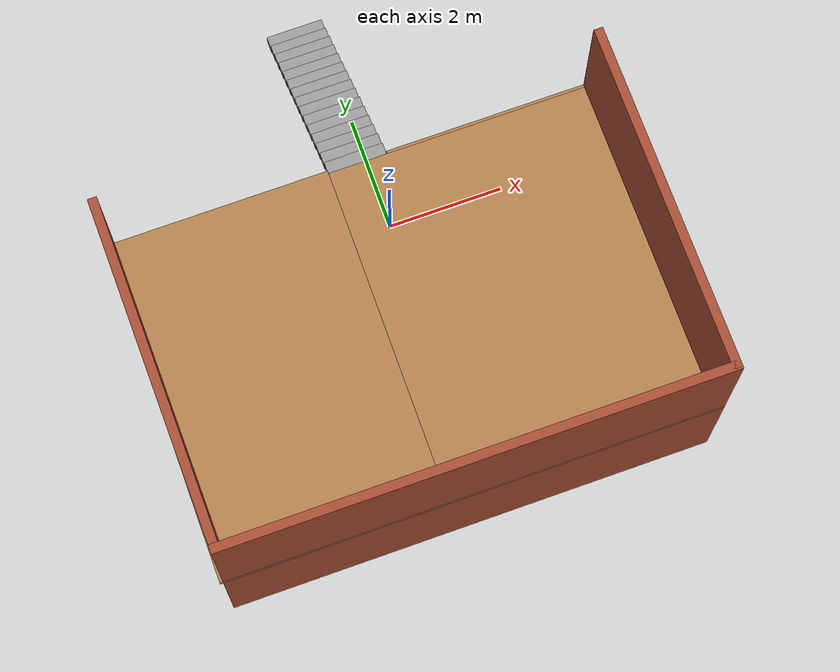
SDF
<?xml version='1.0'?>
<sdf version='1.7'>
  <model name='stairs2'>
    <pose>-0.446865 -0.699443 0 0 -0 0</pose>
    <link name='Floor_4'>
      <pose>-0.01758 -1.72707 2.5 0 -0 0</pose>
      <visual name='Floor_4_Visual_0'>
        <pose>-2.30149 0 0.05 0 -0 0</pose>
        <geometry>
          <box>
            <size>3.75682 5.7631 0.1</size>
          </box>
        </geometry>
        <material>
          <script>
            <uri>file://media/materials/scripts/gazebo.material</uri>
            <name>Gazebo/Wood</name>
          </script>
          <ambient>1 1 1 1</ambient>
        </material>
        <meta>
          <layer>1</layer>
        </meta>
      </visual>
      <collision name='Floor_4_Collision_0'>
        <geometry>
          <box>
            <size>3.75682 5.7631 0.1</size>
          </box>
        </geometry>
        <pose>-2.30149 0 0.05 0 -0 0</pose>
      </collision>
      <visual name='Floor_4_Visual_1'>
        <pose>1.87841 -0.022934 0.05 0 -0 0</pose>
        <geometry>
          <box>
            <size>4.60298 5.71723 0.1</size>
          </box>
        </geometry>
        <material>
          <script>
            <uri>file://media/materials/scripts/gazebo.material</uri>
            <name>Gazebo/Wood</name>
          </script>
          <ambient>1 1 1 1</ambient>
        </material>
        <meta>
          <layer>1</layer>
        </meta>
      </visual>
      <collision name='Floor_4_Collision_1'>
        <geometry>
          <box>
            <size>4.60298 5.71723 0.1</size>
          </box>
        </geometry>
        <pose>1.87841 -0.022934 0.05 0 -0 0</pose>
      </collision>
      <visual name='Floor_4_Visual_2'>
        <pose>2.37841 2.85862 0.05 0 -0 0</pose>
        <geometry>
          <box>
            <size>3.60298 0.045868 0.1</size>
          </box>
        </geometry>
        <material>
          <script>
            <uri>file://media/materials/scripts/gazebo.material</uri>
            <name>Gazebo/Wood</name>
          </script>
          <ambient>1 1 1 1</ambient>
        </material>
        <meta>
          <layer>1</layer>
        </meta>
      </visual>
      <collision name='Floor_4_Collision_2'>
        <geometry>
          <box>
            <size>3.60298 0.045868 0.1</size>
          </box>
        </geometry>
        <pose>2.37841 2.85862 0.05 0 -0 0</pose>
      </collision>
    </link>
    <link name='Stairs_3'>
      <visual name='Stairs_3_Visual_0'>
        <pose>0.059339 4.49195 0.083333 0 -0 0</pose>
        <geometry>
          <box>
            <size>1 0.233333 0.166667</size>
          </box>
        </geometry>
        <material>
          <script>
            <uri>file://media/materials/scripts/gazebo.material</uri>
            <name>Gazebo/Grey</name>
          </script>
          <ambient>1 1 1 1</ambient>
        </material>
        <meta>
          <layer>0</layer>
        </meta>
      </visual>
      <collision name='Stairs_3_Collision_0'>
        <geometry>
          <box>
            <size>1 0.233333 0.166667</size>
          </box>
        </geometry>
        <pose>0.059339 4.49195 0.083333 0 -0 0</pose>
      </collision>
      <visual name='Stairs_3_Visual_1'>
        <pose>0.059339 4.25862 0.25 0 -0 0</pose>
        <geometry>
          <box>
            <size>1 0.233333 0.166667</size>
          </box>
        </geometry>
        <material>
          <script>
            <uri>file://media/materials/scripts/gazebo.material</uri>
            <name>Gazebo/Grey</name>
          </script>
          <ambient>1 1 1 1</ambient>
        </material>
        <meta>
          <layer>0</layer>
        </meta>
      </visual>
      <collision name='Stairs_3_Collision_1'>
        <geometry>
          <box>
            <size>1 0.233333 0.166667</size>
          </box>
        </geometry>
        <pose>0.059339 4.25862 0.25 0 -0 0</pose>
      </collision>
      <visual name='Stairs_3_Visual_2'>
        <pose>0.059339 4.02528 0.416667 0 -0 0</pose>
        <geometry>
          <box>
            <size>1 0.233333 0.166667</size>
          </box>
        </geometry>
        <material>
          <script>
            <uri>file://media/materials/scripts/gazebo.material</uri>
            <name>Gazebo/Grey</name>
          </script>
          <ambient>1 1 1 1</ambient>
        </material>
        <meta>
          <layer>0</layer>
        </meta>
      </visual>
      <collision name='Stairs_3_Collision_2'>
        <geometry>
          <box>
            <size>1 0.233333 0.166667</size>
          </box>
        </geometry>
        <pose>0.059339 4.02528 0.416667 0 -0 0</pose>
      </collision>
      <visual name='Stairs_3_Visual_3'>
        <pose>0.059339 3.79195 0.583333 0 -0 0</pose>
        <geometry>
          <box>
            <size>1 0.233333 0.166667</size>
          </box>
        </geometry>
        <material>
          <script>
            <uri>file://media/materials/scripts/gazebo.material</uri>
            <name>Gazebo/Grey</name>
          </script>
          <ambient>1 1 1 1</ambient>
        </material>
        <meta>
          <layer>0</layer>
        </meta>
      </visual>
      <collision name='Stairs_3_Collision_3'>
        <geometry>
          <box>
            <size>1 0.233333 0.166667</size>
          </box>
        </geometry>
        <pose>0.059339 3.79195 0.583333 0 -0 0</pose>
      </collision>
      <visual name='Stairs_3_Visual_4'>
        <pose>0.059339 3.55862 0.75 0 -0 0</pose>
        <geometry>
          <box>
            <size>1 0.233333 0.166667</size>
          </box>
        </geometry>
        <material>
          <script>
            <uri>file://media/materials/scripts/gazebo.material</uri>
            <name>Gazebo/Grey</name>
          </script>
          <ambient>1 1 1 1</ambient>
        </material>
        <meta>
          <layer>0</layer>
        </meta>
      </visual>
      <collision name='Stairs_3_Collision_4'>
        <geometry>
          <box>
            <size>1 0.233333 0.166667</size>
          </box>
        </geometry>
        <pose>0.059339 3.55862 0.75 0 -0 0</pose>
      </collision>
      <visual name='Stairs_3_Visual_5'>
        <pose>0.059339 3.32528 0.916667 0 -0 0</pose>
        <geometry>
          <box>
            <size>1 0.233333 0.166667</size>
          </box>
        </geometry>
        <material>
          <script>
            <uri>file://media/materials/scripts/gazebo.material</uri>
            <name>Gazebo/Grey</name>
          </script>
          <ambient>1 1 1 1</ambient>
        </material>
        <meta>
          <layer>0</layer>
        </meta>
      </visual>
      <collision name='Stairs_3_Collision_5'>
        <geometry>
          <box>
            <size>1 0.233333 0.166667</size>
          </box>
        </geometry>
        <pose>0.059339 3.32528 0.916667 0 -0 0</pose>
      </collision>
      <visual name='Stairs_3_Visual_6'>
        <pose>0.059339 3.09195 1.08333 0 -0 0</pose>
        <geometry>
          <box>
            <size>1 0.233333 0.166667</size>
          </box>
        </geometry>
        <material>
          <script>
            <uri>file://media/materials/scripts/gazebo.material</uri>
            <name>Gazebo/Grey</name>
          </script>
          <ambient>1 1 1 1</ambient>
        </material>
        <meta>
          <layer>0</layer>
        </meta>
      </visual>
      <collision name='Stairs_3_Collision_6'>
        <geometry>
          <box>
            <size>1 0.233333 0.166667</size>
          </box>
        </geometry>
        <pose>0.059339 3.09195 1.08333 0 -0 0</pose>
      </collision>
      <visual name='Stairs_3_Visual_7'>
        <pose>0.059339 2.85862 1.25 0 -0 0</pose>
        <geometry>
          <box>
            <size>1 0.233333 0.166667</size>
          </box>
        </geometry>
        <material>
          <script>
            <uri>file://media/materials/scripts/gazebo.material</uri>
            <name>Gazebo/Grey</name>
          </script>
          <ambient>1 1 1 1</ambient>
        </material>
        <meta>
          <layer>0</layer>
        </meta>
      </visual>
      <collision name='Stairs_3_Collision_7'>
        <geometry>
          <box>
            <size>1 0.233333 0.166667</size>
          </box>
        </geometry>
        <pose>0.059339 2.85862 1.25 0 -0 0</pose>
      </collision>
      <visual name='Stairs_3_Visual_8'>
        <pose>0.059339 2.62528 1.41667 0 -0 0</pose>
        <geometry>
          <box>
            <size>1 0.233333 0.166667</size>
          </box>
        </geometry>
        <material>
          <script>
            <uri>file://media/materials/scripts/gazebo.material</uri>
            <name>Gazebo/Grey</name>
          </script>
          <ambient>1 1 1 1</ambient>
        </material>
        <meta>
          <layer>0</layer>
        </meta>
      </visual>
      <collision name='Stairs_3_Collision_8'>
        <geometry>
          <box>
            <size>1 0.233333 0.166667</size>
          </box>
        </geometry>
        <pose>0.059339 2.62528 1.41667 0 -0 0</pose>
      </collision>
      <visual name='Stairs_3_Visual_9'>
        <pose>0.059339 2.39195 1.58333 0 -0 0</pose>
        <geometry>
          <box>
            <size>1 0.233333 0.166667</size>
          </box>
        </geometry>
        <material>
          <script>
            <uri>file://media/materials/scripts/gazebo.material</uri>
            <name>Gazebo/Grey</name>
          </script>
          <ambient>1 1 1 1</ambient>
        </material>
        <meta>
          <layer>0</layer>
        </meta>
      </visual>
      <collision name='Stairs_3_Collision_9'>
        <geometry>
          <box>
            <size>1 0.233333 0.166667</size>
          </box>
        </geometry>
        <pose>0.059339 2.39195 1.58333 0 -0 0</pose>
      </collision>
      <visual name='Stairs_3_Visual_10'>
        <pose>0.059339 2.15862 1.75 0 -0 0</pose>
        <geometry>
          <box>
            <size>1 0.233333 0.166667</size>
          </box>
        </geometry>
        <material>
          <script>
            <uri>file://media/materials/scripts/gazebo.material</uri>
            <name>Gazebo/Grey</name>
          </script>
          <ambient>1 1 1 1</ambient>
        </material>
        <meta>
          <layer>0</layer>
        </meta>
      </visual>
      <collision name='Stairs_3_Collision_10'>
        <geometry>
          <box>
            <size>1 0.233333 0.166667</size>
          </box>
        </geometry>
        <pose>0.059339 2.15862 1.75 0 -0 0</pose>
      </collision>
      <visual name='Stairs_3_Visual_11'>
        <pose>0.059339 1.92528 1.91667 0 -0 0</pose>
        <geometry>
          <box>
            <size>1 0.233333 0.166667</size>
          </box>
        </geometry>
        <material>
          <script>
            <uri>file://media/materials/scripts/gazebo.material</uri>
            <name>Gazebo/Grey</name>
          </script>
          <ambient>1 1 1 1</ambient>
        </material>
        <meta>
          <layer>0</layer>
        </meta>
      </visual>
      <collision name='Stairs_3_Collision_11'>
        <geometry>
          <box>
            <size>1 0.233333 0.166667</size>
          </box>
        </geometry>
        <pose>0.059339 1.92528 1.91667 0 -0 0</pose>
      </collision>
      <visual name='Stairs_3_Visual_12'>
        <pose>0.059339 1.69195 2.08333 0 -0 0</pose>
        <geometry>
          <box>
            <size>1 0.233333 0.166667</size>
          </box>
        </geometry>
        <material>
          <script>
            <uri>file://media/materials/scripts/gazebo.material</uri>
            <name>Gazebo/Grey</name>
          </script>
          <ambient>1 1 1 1</ambient>
        </material>
        <meta>
          <layer>0</layer>
        </meta>
      </visual>
      <collision name='Stairs_3_Collision_12'>
        <geometry>
          <box>
            <size>1 0.233333 0.166667</size>
          </box>
        </geometry>
        <pose>0.059339 1.69195 2.08333 0 -0 0</pose>
      </collision>
      <visual name='Stairs_3_Visual_13'>
        <pose>0.059339 1.45862 2.25 0 -0 0</pose>
        <geometry>
          <box>
            <size>1 0.233333 0.166667</size>
          </box>
        </geometry>
        <material>
          <script>
            <uri>file://media/materials/scripts/gazebo.material</uri>
            <name>Gazebo/Grey</name>
          </script>
          <ambient>1 1 1 1</ambient>
        </material>
        <meta>
          <layer>0</layer>
        </meta>
      </visual>
      <collision name='Stairs_3_Collision_13'>
        <geometry>
          <box>
            <size>1 0.233333 0.166667</size>
          </box>
        </geometry>
        <pose>0.059339 1.45862 2.25 0 -0 0</pose>
      </collision>
      <visual name='Stairs_3_Visual_14'>
        <pose>0.059339 1.22528 2.41667 0 -0 0</pose>
        <geometry>
          <box>
            <size>1 0.233333 0.166667</size>
          </box>
        </geometry>
        <material>
          <script>
            <uri>file://media/materials/scripts/gazebo.material</uri>
            <name>Gazebo/Grey</name>
          </script>
          <ambient>1 1 1 1</ambient>
        </material>
        <meta>
          <layer>0</layer>
        </meta>
      </visual>
      <collision name='Stairs_3_Collision_14'>
        <geometry>
          <box>
            <size>1 0.233333 0.166667</size>
          </box>
        </geometry>
        <pose>0.059339 1.22528 2.41667 0 -0 0</pose>
      </collision>
    </link>
    <link name='Wall_44'>
      <collision name='Wall_44_Collision'>
        <geometry>
          <box>
            <size>5.70366 0.15 2.5</size>
          </box>
        </geometry>
        <pose>0 0 1.25 0 -0 0</pose>
      </collision>
      <visual name='Wall_44_Visual'>
        <pose>0 0 1.25 0 -0 0</pose>
        <geometry>
          <box>
            <size>5.70366 0.15 2.5</size>
          </box>
        </geometry>
        <material>
          <script>
            <uri>file://media/materials/scripts/gazebo.material</uri>
            <name>Gazebo/Bricks</name>
          </script>
          <ambient>1 1 1 1</ambient>
        </material>
        <meta>
          <layer>0</layer>
        </meta>
      </visual>
      <pose>-4.0693 -1.71554 0 0 -0 -1.5708</pose>
    </link>
    <link name='Wall_45'>
      <collision name='Wall_45_Collision'>
        <geometry>
          <box>
            <size>8.30592 0.15 2.5</size>
          </box>
        </geometry>
        <pose>0 0 1.25 0 -0 0</pose>
      </collision>
      <visual name='Wall_45_Visual'>
        <pose>0 0 1.25 0 -0 0</pose>
        <geometry>
          <box>
            <size>8.30592 0.15 2.5</size>
          </box>
        </geometry>
        <material>
          <script>
            <uri>file://media/materials/scripts/gazebo.material</uri>
            <name>Gazebo/Bricks</name>
          </script>
          <ambient>1 1 1 1</ambient>
        </material>
        <meta>
          <layer>0</layer>
        </meta>
      </visual>
      <pose>0.008655 -4.53046 0 0 -0 -0.000761</pose>
    </link>
    <link name='Wall_46'>
      <collision name='Wall_46_Collision'>
        <geometry>
          <box>
            <size>5.6862 0.15 2.5</size>
          </box>
        </geometry>
        <pose>0 0 1.25 0 -0 0</pose>
      </collision>
      <visual name='Wall_46_Visual'>
        <pose>0 0 1.25 0 -0 0</pose>
        <geometry>
          <box>
            <size>5.6862 0.15 2.5</size>
          </box>
        </geometry>
        <material>
          <script>
            <uri>file://media/materials/scripts/gazebo.material</uri>
            <name>Gazebo/Bricks</name>
          </script>
          <ambient>1 1 1 1</ambient>
        </material>
        <meta>
          <layer>0</layer>
        </meta>
      </visual>
      <pose>4.07787 -1.73049 0 0 -0 1.57396</pose>
    </link>
    <link name='Wall_47'>
      <collision name='Wall_47_Collision'>
        <geometry>
          <box>
            <size>8.30592 0.15 2.5</size>
          </box>
        </geometry>
        <pose>0 0 1.25 0 -0 0</pose>
      </collision>
      <visual name='Wall_47_Visual'>
        <pose>0 0 1.25 0 -0 0</pose>
        <geometry>
          <box>
            <size>8.30592 0.15 2.5</size>
          </box>
        </geometry>
        <material>
          <script>
            <uri>file://media/materials/scripts/gazebo.material</uri>
            <name>Gazebo/Bricks</name>
          </script>
          <ambient>1 1 1 1</ambient>
        </material>
        <meta>
          <layer>0</layer>
        </meta>
      </visual>
      <pose>-0.008835 1.0407 0 0 -0 3.14083</pose>
    </link>
    <link name='Wall_49'>
      <collision name='Wall_49_Collision'>
        <geometry>
          <box>
            <size>5.7214 0.15 2.5</size>
          </box>
        </geometry>
        <pose>0 0 1.25 0 -0 0</pose>
      </collision>
      <visual name='Wall_49_Visual'>
        <pose>0 0 1.25 0 -0 0</pose>
        <geometry>
          <box>
            <size>5.7214 0.15 2.5</size>
          </box>
        </geometry>
        <material>
          <script>
            <uri>file://media/materials/scripts/gazebo.material</uri>
            <name>Gazebo/Bricks</name>
          </script>
          <ambient>1 1 1 1</ambient>
        </material>
        <meta>
          <layer>1</layer>
        </meta>
      </visual>
      <pose>-4.09554 -1.7068 2.5 0 -0 -1.56138</pose>
    </link>
    <link name='Wall_50'>
      <collision name='Wall_50_Collision'>
        <geometry>
          <box>
            <size>8.30592 0.15 2.5</size>
          </box>
        </geometry>
        <pose>0 0 1.25 0 -0 0</pose>
      </collision>
      <visual name='Wall_50_Visual'>
        <pose>0 0 1.25 0 -0 0</pose>
        <geometry>
          <box>
            <size>8.30592 0.15 2.5</size>
          </box>
        </geometry>
        <material>
          <script>
            <uri>file://media/materials/scripts/gazebo.material</uri>
            <name>Gazebo/Bricks</name>
          </script>
          <ambient>1 1 1 1</ambient>
        </material>
        <meta>
          <layer>1</layer>
        </meta>
      </visual>
      <pose>0.008655 -4.53045 2.5 0 -0 -0.000761</pose>
    </link>
    <link name='Wall_51'>
      <collision name='Wall_51_Collision'>
        <geometry>
          <box>
            <size>5.7214 0.15 2.5</size>
          </box>
        </geometry>
        <pose>0 0 1.25 0 -0 0</pose>
      </collision>
      <visual name='Wall_51_Visual'>
        <pose>0 0 1.25 0 -0 0</pose>
        <geometry>
          <box>
            <size>5.7214 0.15 2.5</size>
          </box>
        </geometry>
        <material>
          <script>
            <uri>file://media/materials/scripts/gazebo.material</uri>
            <name>Gazebo/Bricks</name>
          </script>
          <ambient>1 1 1 1</ambient>
        </material>
        <meta>
          <layer>1</layer>
        </meta>
      </visual>
      <pose>4.06038 -1.713 2.5 0 -0 1.58021</pose>
    </link>
    <static>1</static>
  </model>
</sdf>
